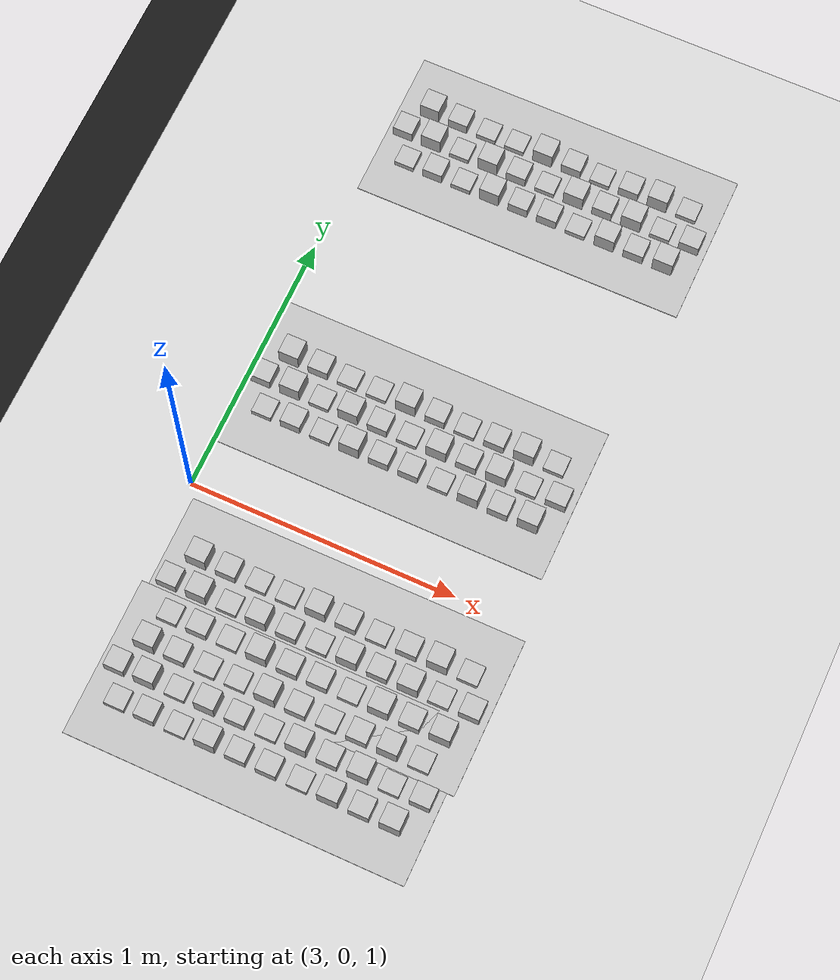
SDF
<sdf version="1.6">
 <world name="default">
  <model name="ground_plane">
   <static>1</static>
   <link name="link">
    <collision name="collision">
     <geometry><plane><normal>0 0 1</normal><size>100 100</size></plane></geometry>
     <surface><friction><ode><mu>100</mu><mu2>50</mu2></ode></friction></surface>
    </collision>
    <visual name="visual">
     <cast_shadows>0</cast_shadows>
     <geometry><plane><normal>0 0 1</normal><size>100 100</size></plane></geometry>
     <material>
      <script><uri>file://media/materials/scripts/gazebo.material</uri><name>Gazebo/Grey</name></script>
     </material>
    </visual>
   </link>
  </model>
  <model name="asphalt_plane">
   <static>1</static>
   <link name="link">
    <collision name="collision">
     <geometry><box><size>20 20 1.4296</size></box></geometry>
     <surface><friction><ode><mu>100</mu><mu2>50</mu2></ode></friction></surface>
    </collision>
    <visual name="visual">
     <cast_shadows>0</cast_shadows>
     <geometry><box><size>20 20 1.4296</size></box></geometry>
     <material>
      <script>
       <uri>model://asphalt_plane/materials/scripts</uri>
       <uri>model://asphalt_plane/materials/textures</uri>
       <name>vrc/asphalt</name>
      </script>
     </material>
    </visual>
   </link>
   <pose>-8.53833 2.29833 0.165376 0 -0 0</pose>
  </model>
  <model name="frc2016_roughterrain_1_clone_10">
   <static>0</static>
   <link name="link">
    <visual name="platform">
     <pose>0 0 0.08269 0 -0 0</pose>
     <geometry><box><size>1.27 0.5969 0.003175</size></box></geometry>
    </visual>
    <collision name="platform">
     <pose>0 0 0.08269 0 -0 0</pose>
     <geometry><box><size>1.27 0.5969 0.003175</size></box></geometry>
    </collision>
    <visual name="row1_block1_sm">
     <pose>0.51435 0.1143 0.09698 0 -0 0</pose>
     <geometry><box><size>0.0762 0.0762 0.0254</size></box></geometry>
    </visual>
    <collision name="row1_block1_sm">
     <pose>0.51435 0.1143 0.09698 0 -0 0</pose>
     <geometry><box><size>0.0762 0.0762 0.0254</size></box></geometry>
    </collision>
    <visual name="row1_block2_lg">
     <pose>0.40005 0.1143 0.12238 0 -0 0</pose>
     <geometry><box><size>0.0762 0.0762 0.0762</size></box></geometry>
    </visual>
    <collision name="row1_block2_lg">
     <pose>0.40005 0.1143 0.12238 0 -0 0</pose>
     <geometry><box><size>0.0762 0.0762 0.0762</size></box></geometry>
    </collision>
    <visual name="row1_block3_md">
     <pose>0.28575 0.1143 0.10968 0 -0 0</pose>
     <geometry><box><size>0.0762 0.0762 0.0508</size></box></geometry>
    </visual>
    <collision name="row1_block3_md">
     <pose>0.28575 0.1143 0.10968 0 -0 0</pose>
     <geometry><box><size>0.0762 0.0762 0.0508</size></box></geometry>
    </collision>
    <visual name="row1_block4_sm">
     <pose>0.17145 0.1143 0.09698 0 -0 0</pose>
     <geometry><box><size>0.0762 0.0762 0.0254</size></box></geometry>
    </visual>
    <collision name="row1_block4_sm">
     <pose>0.17145 0.1143 0.09698 0 -0 0</pose>
     <geometry><box><size>0.0762 0.0762 0.0254</size></box></geometry>
    </collision>
    <visual name="row1_block5_md">
     <pose>0.05715 0.1143 0.10968 0 -0 0</pose>
     <geometry><box><size>0.0762 0.0762 0.0508</size></box></geometry>
    </visual>
    <collision name="row1_block5_md">
     <pose>0.05715 0.1143 0.10968 0 -0 0</pose>
     <geometry><box><size>0.0762 0.0762 0.0508</size></box></geometry>
    </collision>
    <visual name="row1_block6_lg">
     <pose>-0.05715 0.1143 0.12238 0 -0 0</pose>
     <geometry><box><size>0.0762 0.0762 0.0762</size></box></geometry>
    </visual>
    <collision name="row1_block6_lg">
     <pose>-0.05715 0.1143 0.12238 0 -0 0</pose>
     <geometry><box><size>0.0762 0.0762 0.0762</size></box></geometry>
    </collision>
    <visual name="row1_block7_sm">
     <pose>-0.17145 0.1143 0.09698 0 -0 0</pose>
     <geometry><box><size>0.0762 0.0762 0.0254</size></box></geometry>
    </visual>
    <collision name="row1_block7_sm">
     <pose>-0.17145 0.1143 0.09698 0 -0 0</pose>
     <geometry><box><size>0.0762 0.0762 0.0254</size></box></geometry>
    </collision>
    <visual name="row1_block8_sm">
     <pose>-0.28575 0.1143 0.09698 0 -0 0</pose>
     <geometry><box><size>0.0762 0.0762 0.0254</size></box></geometry>
    </visual>
    <collision name="row1_block8_sm">
     <pose>-0.28575 0.1143 0.09698 0 -0 0</pose>
     <geometry><box><size>0.0762 0.0762 0.0254</size></box></geometry>
    </collision>
    <visual name="row1_block9_md">
     <pose>-0.40005 0.1143 0.10968 0 -0 0</pose>
     <geometry><box><size>0.0762 0.0762 0.0508</size></box></geometry>
    </visual>
    <collision name="row1_block9_md">
     <pose>-0.40005 0.1143 0.10968 0 -0 0</pose>
     <geometry><box><size>0.0762 0.0762 0.0508</size></box></geometry>
    </collision>
    <visual name="row1_block10_lg">
     <pose>-0.51435 0.1143 0.12238 0 -0 0</pose>
     <geometry><box><size>0.0762 0.0762 0.0762</size></box></geometry>
    </visual>
    <collision name="row1_block10_lg">
     <pose>-0.51435 0.1143 0.12238 0 -0 0</pose>
     <geometry><box><size>0.0762 0.0762 0.0762</size></box></geometry>
    </collision>
    <visual name="row2_block1_md">
     <pose>0.5715 0 0.10968 0 -0 0</pose>
     <geometry><box><size>0.0762 0.0762 0.0508</size></box></geometry>
    </visual>
    <collision name="row2_block1_md">
     <pose>0.5715 0 0.10968 0 -0 0</pose>
     <geometry><box><size>0.0762 0.0762 0.0508</size></box></geometry>
    </collision>
    <visual name="row2_block2_sm">
     <pose>0.4572 0 0.09698 0 -0 0</pose>
     <geometry><box><size>0.0762 0.0762 0.0254</size></box></geometry>
    </visual>
    <collision name="row2_block2_sm">
     <pose>0.4572 0 0.09698 0 -0 0</pose>
     <geometry><box><size>0.0762 0.0762 0.0254</size></box></geometry>
    </collision>
    <visual name="row2_block3_lg">
     <pose>0.3429 0 0.12238 0 -0 0</pose>
     <geometry><box><size>0.0762 0.0762 0.0762</size></box></geometry>
    </visual>
    <collision name="row2_block3_lg">
     <pose>0.3429 0 0.12238 0 -0 0</pose>
     <geometry><box><size>0.0762 0.0762 0.0762</size></box></geometry>
    </collision>
    <visual name="row2_block4_md">
     <pose>0.2286 0 0.10968 0 -0 0</pose>
     <geometry><box><size>0.0762 0.0762 0.0508</size></box></geometry>
    </visual>
    <collision name="row2_block4_md">
     <pose>0.2286 0 0.10968 0 -0 0</pose>
     <geometry><box><size>0.0762 0.0762 0.0508</size></box></geometry>
    </collision>
    <visual name="row2_block5_lg">
     <pose>0.1143 0 0.12238 0 -0 0</pose>
     <geometry><box><size>0.0762 0.0762 0.0762</size></box></geometry>
    </visual>
    <collision name="row2_block5_lg">
     <pose>0.1143 0 0.12238 0 -0 0</pose>
     <geometry><box><size>0.0762 0.0762 0.0762</size></box></geometry>
    </collision>
    <visual name="row2_block6_sm">
     <pose>0 0 0.09698 0 -0 0</pose>
     <geometry><box><size>0.0762 0.0762 0.0254</size></box></geometry>
    </visual>
    <collision name="row2_block6_sm">
     <pose>0 0 0.09698 0 -0 0</pose>
     <geometry><box><size>0.0762 0.0762 0.0254</size></box></geometry>
    </collision>
    <visual name="row2_block7_md">
     <pose>-0.1143 0 0.10968 0 -0 0</pose>
     <geometry><box><size>0.0762 0.0762 0.0508</size></box></geometry>
    </visual>
    <collision name="row2_block7_md">
     <pose>-0.1143 0 0.10968 0 -0 0</pose>
     <geometry><box><size>0.0762 0.0762 0.0508</size></box></geometry>
    </collision>
    <visual name="row2_block8_lg">
     <pose>-0.2286 0 0.12238 0 -0 0</pose>
     <geometry><box><size>0.0762 0.0762 0.0762</size></box></geometry>
    </visual>
    <collision name="row2_block8_lg">
     <pose>-0.2286 0 0.12238 0 -0 0</pose>
     <geometry><box><size>0.0762 0.0762 0.0762</size></box></geometry>
    </collision>
    <visual name="row2_block9_sm">
     <pose>-0.3429 0 0.09698 0 -0 0</pose>
     <geometry><box><size>0.0762 0.0762 0.0254</size></box></geometry>
    </visual>
    <collision name="row2_block9_sm">
     <pose>-0.3429 0 0.09698 0 -0 0</pose>
     <geometry><box><size>0.0762 0.0762 0.0254</size></box></geometry>
    </collision>
    <visual name="row2_block10_lg">
     <pose>-0.4572 0 0.12238 0 -0 0</pose>
     <geometry><box><size>0.0762 0.0762 0.0762</size></box></geometry>
    </visual>
    <collision name="row2_block10_lg">
     <pose>-0.4572 0 0.12238 0 -0 0</pose>
     <geometry><box><size>0.0762 0.0762 0.0762</size></box></geometry>
    </collision>
    <visual name="row2_block11_md">
     <pose>-0.5715 0 0.10968 0 -0 0</pose>
     <geometry><box><size>0.0762 0.0762 0.0508</size></box></geometry>
    </visual>
    <collision name="row2_block11_md">
     <pose>-0.5715 0 0.10968 0 -0 0</pose>
     <geometry><box><size>0.0762 0.0762 0.0508</size></box></geometry>
    </collision>
    <visual name="row3_block1_lg">
     <pose>0.51435 -0.1143 0.12238 0 -0 0</pose>
     <geometry><box><size>0.0762 0.0762 0.0762</size></box></geometry>
    </visual>
    <collision name="row3_block1_lg">
     <pose>0.51435 -0.1143 0.12238 0 -0 0</pose>
     <geometry><box><size>0.0762 0.0762 0.0762</size></box></geometry>
    </collision>
    <visual name="row3_block2_md">
     <pose>0.40005 -0.1143 0.10968 0 -0 0</pose>
     <geometry><box><size>0.0762 0.0762 0.0508</size></box></geometry>
    </visual>
    <collision name="row3_block2_md">
     <pose>0.40005 -0.1143 0.10968 0 -0 0</pose>
     <geometry><box><size>0.0762 0.0762 0.0508</size></box></geometry>
    </collision>
    <visual name="row3_block3_lg">
     <pose>0.28575 -0.1143 0.12238 0 -0 0</pose>
     <geometry><box><size>0.0762 0.0762 0.0762</size></box></geometry>
    </visual>
    <collision name="row3_block3_lg">
     <pose>0.28575 -0.1143 0.12238 0 -0 0</pose>
     <geometry><box><size>0.0762 0.0762 0.0762</size></box></geometry>
    </collision>
    <visual name="row3_block4_sm">
     <pose>0.17145 -0.1143 0.09698 0 -0 0</pose>
     <geometry><box><size>0.0762 0.0762 0.0254</size></box></geometry>
    </visual>
    <collision name="row3_block4_sm">
     <pose>0.17145 -0.1143 0.09698 0 -0 0</pose>
     <geometry><box><size>0.0762 0.0762 0.0254</size></box></geometry>
    </collision>
    <visual name="row3_block5_md">
     <pose>0.05715 -0.1143 0.10968 0 -0 0</pose>
     <geometry><box><size>0.0762 0.0762 0.0508</size></box></geometry>
    </visual>
    <collision name="row3_block5_md">
     <pose>0.05715 -0.1143 0.10968 0 -0 0</pose>
     <geometry><box><size>0.0762 0.0762 0.0508</size></box></geometry>
    </collision>
    <visual name="row3_block6_md">
     <pose>-0.05715 -0.1143 0.10968 0 -0 0</pose>
     <geometry><box><size>0.0762 0.0762 0.0508</size></box></geometry>
    </visual>
    <collision name="row3_block6_md">
     <pose>-0.05715 -0.1143 0.10968 0 -0 0</pose>
     <geometry><box><size>0.0762 0.0762 0.0508</size></box></geometry>
    </collision>
    <visual name="row3_block7_lg">
     <pose>-0.17145 -0.1143 0.12238 0 -0 0</pose>
     <geometry><box><size>0.0762 0.0762 0.0762</size></box></geometry>
    </visual>
    <collision name="row3_block7_lg">
     <pose>-0.17145 -0.1143 0.12238 0 -0 0</pose>
     <geometry><box><size>0.0762 0.0762 0.0762</size></box></geometry>
    </collision>
    <visual name="row3_block8_sm">
     <pose>-0.28575 -0.1143 0.09698 0 -0 0</pose>
     <geometry><box><size>0.0762 0.0762 0.0254</size></box></geometry>
    </visual>
    <collision name="row3_block8_sm">
     <pose>-0.28575 -0.1143 0.09698 0 -0 0</pose>
     <geometry><box><size>0.0762 0.0762 0.0254</size></box></geometry>
    </collision>
    <visual name="row3_block9_md">
     <pose>-0.40005 -0.1143 0.10968 0 -0 0</pose>
     <geometry><box><size>0.0762 0.0762 0.0508</size></box></geometry>
    </visual>
    <collision name="row3_block9_md">
     <pose>-0.40005 -0.1143 0.10968 0 -0 0</pose>
     <geometry><box><size>0.0762 0.0762 0.0508</size></box></geometry>
    </collision>
    <visual name="row3_block10_sm">
     <pose>-0.51435 -0.1143 0.09698 0 -0 0</pose>
     <geometry><box><size>0.0762 0.0762 0.0254</size></box></geometry>
    </visual>
    <collision name="row3_block10_sm">
     <pose>-0.51435 -0.1143 0.09698 0 -0 0</pose>
     <geometry><box><size>0.0762 0.0762 0.0254</size></box></geometry>
    </collision>
   </link>
   <pose>3.63208 -0.300867 0.777128 0 -0 0</pose>
  </model>
  <model name="frc2016_roughterrain_1_clone_11">
   <static>0</static>
   <link name="link">
    <visual name="platform">
     <pose>0 0 0.08269 0 -0 0</pose>
     <geometry><box><size>1.27 0.5969 0.003175</size></box></geometry>
    </visual>
    <collision name="platform">
     <pose>0 0 0.08269 0 -0 0</pose>
     <geometry><box><size>1.27 0.5969 0.003175</size></box></geometry>
    </collision>
    <visual name="row1_block1_sm">
     <pose>0.51435 0.1143 0.09698 0 -0 0</pose>
     <geometry><box><size>0.0762 0.0762 0.0254</size></box></geometry>
    </visual>
    <collision name="row1_block1_sm">
     <pose>0.51435 0.1143 0.09698 0 -0 0</pose>
     <geometry><box><size>0.0762 0.0762 0.0254</size></box></geometry>
    </collision>
    <visual name="row1_block2_lg">
     <pose>0.40005 0.1143 0.12238 0 -0 0</pose>
     <geometry><box><size>0.0762 0.0762 0.0762</size></box></geometry>
    </visual>
    <collision name="row1_block2_lg">
     <pose>0.40005 0.1143 0.12238 0 -0 0</pose>
     <geometry><box><size>0.0762 0.0762 0.0762</size></box></geometry>
    </collision>
    <visual name="row1_block3_md">
     <pose>0.28575 0.1143 0.10968 0 -0 0</pose>
     <geometry><box><size>0.0762 0.0762 0.0508</size></box></geometry>
    </visual>
    <collision name="row1_block3_md">
     <pose>0.28575 0.1143 0.10968 0 -0 0</pose>
     <geometry><box><size>0.0762 0.0762 0.0508</size></box></geometry>
    </collision>
    <visual name="row1_block4_sm">
     <pose>0.17145 0.1143 0.09698 0 -0 0</pose>
     <geometry><box><size>0.0762 0.0762 0.0254</size></box></geometry>
    </visual>
    <collision name="row1_block4_sm">
     <pose>0.17145 0.1143 0.09698 0 -0 0</pose>
     <geometry><box><size>0.0762 0.0762 0.0254</size></box></geometry>
    </collision>
    <visual name="row1_block5_md">
     <pose>0.05715 0.1143 0.10968 0 -0 0</pose>
     <geometry><box><size>0.0762 0.0762 0.0508</size></box></geometry>
    </visual>
    <collision name="row1_block5_md">
     <pose>0.05715 0.1143 0.10968 0 -0 0</pose>
     <geometry><box><size>0.0762 0.0762 0.0508</size></box></geometry>
    </collision>
    <visual name="row1_block6_lg">
     <pose>-0.05715 0.1143 0.12238 0 -0 0</pose>
     <geometry><box><size>0.0762 0.0762 0.0762</size></box></geometry>
    </visual>
    <collision name="row1_block6_lg">
     <pose>-0.05715 0.1143 0.12238 0 -0 0</pose>
     <geometry><box><size>0.0762 0.0762 0.0762</size></box></geometry>
    </collision>
    <visual name="row1_block7_sm">
     <pose>-0.17145 0.1143 0.09698 0 -0 0</pose>
     <geometry><box><size>0.0762 0.0762 0.0254</size></box></geometry>
    </visual>
    <collision name="row1_block7_sm">
     <pose>-0.17145 0.1143 0.09698 0 -0 0</pose>
     <geometry><box><size>0.0762 0.0762 0.0254</size></box></geometry>
    </collision>
    <visual name="row1_block8_sm">
     <pose>-0.28575 0.1143 0.09698 0 -0 0</pose>
     <geometry><box><size>0.0762 0.0762 0.0254</size></box></geometry>
    </visual>
    <collision name="row1_block8_sm">
     <pose>-0.28575 0.1143 0.09698 0 -0 0</pose>
     <geometry><box><size>0.0762 0.0762 0.0254</size></box></geometry>
    </collision>
    <visual name="row1_block9_md">
     <pose>-0.40005 0.1143 0.10968 0 -0 0</pose>
     <geometry><box><size>0.0762 0.0762 0.0508</size></box></geometry>
    </visual>
    <collision name="row1_block9_md">
     <pose>-0.40005 0.1143 0.10968 0 -0 0</pose>
     <geometry><box><size>0.0762 0.0762 0.0508</size></box></geometry>
    </collision>
    <visual name="row1_block10_lg">
     <pose>-0.51435 0.1143 0.12238 0 -0 0</pose>
     <geometry><box><size>0.0762 0.0762 0.0762</size></box></geometry>
    </visual>
    <collision name="row1_block10_lg">
     <pose>-0.51435 0.1143 0.12238 0 -0 0</pose>
     <geometry><box><size>0.0762 0.0762 0.0762</size></box></geometry>
    </collision>
    <visual name="row2_block1_md">
     <pose>0.5715 0 0.10968 0 -0 0</pose>
     <geometry><box><size>0.0762 0.0762 0.0508</size></box></geometry>
    </visual>
    <collision name="row2_block1_md">
     <pose>0.5715 0 0.10968 0 -0 0</pose>
     <geometry><box><size>0.0762 0.0762 0.0508</size></box></geometry>
    </collision>
    <visual name="row2_block2_sm">
     <pose>0.4572 0 0.09698 0 -0 0</pose>
     <geometry><box><size>0.0762 0.0762 0.0254</size></box></geometry>
    </visual>
    <collision name="row2_block2_sm">
     <pose>0.4572 0 0.09698 0 -0 0</pose>
     <geometry><box><size>0.0762 0.0762 0.0254</size></box></geometry>
    </collision>
    <visual name="row2_block3_lg">
     <pose>0.3429 0 0.12238 0 -0 0</pose>
     <geometry><box><size>0.0762 0.0762 0.0762</size></box></geometry>
    </visual>
    <collision name="row2_block3_lg">
     <pose>0.3429 0 0.12238 0 -0 0</pose>
     <geometry><box><size>0.0762 0.0762 0.0762</size></box></geometry>
    </collision>
    <visual name="row2_block4_md">
     <pose>0.2286 0 0.10968 0 -0 0</pose>
     <geometry><box><size>0.0762 0.0762 0.0508</size></box></geometry>
    </visual>
    <collision name="row2_block4_md">
     <pose>0.2286 0 0.10968 0 -0 0</pose>
     <geometry><box><size>0.0762 0.0762 0.0508</size></box></geometry>
    </collision>
    <visual name="row2_block5_lg">
     <pose>0.1143 0 0.12238 0 -0 0</pose>
     <geometry><box><size>0.0762 0.0762 0.0762</size></box></geometry>
    </visual>
    <collision name="row2_block5_lg">
     <pose>0.1143 0 0.12238 0 -0 0</pose>
     <geometry><box><size>0.0762 0.0762 0.0762</size></box></geometry>
    </collision>
    <visual name="row2_block6_sm">
     <pose>0 0 0.09698 0 -0 0</pose>
     <geometry><box><size>0.0762 0.0762 0.0254</size></box></geometry>
    </visual>
    <collision name="row2_block6_sm">
     <pose>0 0 0.09698 0 -0 0</pose>
     <geometry><box><size>0.0762 0.0762 0.0254</size></box></geometry>
    </collision>
    <visual name="row2_block7_md">
     <pose>-0.1143 0 0.10968 0 -0 0</pose>
     <geometry><box><size>0.0762 0.0762 0.0508</size></box></geometry>
    </visual>
    <collision name="row2_block7_md">
     <pose>-0.1143 0 0.10968 0 -0 0</pose>
     <geometry><box><size>0.0762 0.0762 0.0508</size></box></geometry>
    </collision>
    <visual name="row2_block8_lg">
     <pose>-0.2286 0 0.12238 0 -0 0</pose>
     <geometry><box><size>0.0762 0.0762 0.0762</size></box></geometry>
    </visual>
    <collision name="row2_block8_lg">
     <pose>-0.2286 0 0.12238 0 -0 0</pose>
     <geometry><box><size>0.0762 0.0762 0.0762</size></box></geometry>
    </collision>
    <visual name="row2_block9_sm">
     <pose>-0.3429 0 0.09698 0 -0 0</pose>
     <geometry><box><size>0.0762 0.0762 0.0254</size></box></geometry>
    </visual>
    <collision name="row2_block9_sm">
     <pose>-0.3429 0 0.09698 0 -0 0</pose>
     <geometry><box><size>0.0762 0.0762 0.0254</size></box></geometry>
    </collision>
    <visual name="row2_block10_lg">
     <pose>-0.4572 0 0.12238 0 -0 0</pose>
     <geometry><box><size>0.0762 0.0762 0.0762</size></box></geometry>
    </visual>
    <collision name="row2_block10_lg">
     <pose>-0.4572 0 0.12238 0 -0 0</pose>
     <geometry><box><size>0.0762 0.0762 0.0762</size></box></geometry>
    </collision>
    <visual name="row2_block11_md">
     <pose>-0.5715 0 0.10968 0 -0 0</pose>
     <geometry><box><size>0.0762 0.0762 0.0508</size></box></geometry>
    </visual>
    <collision name="row2_block11_md">
     <pose>-0.5715 0 0.10968 0 -0 0</pose>
     <geometry><box><size>0.0762 0.0762 0.0508</size></box></geometry>
    </collision>
    <visual name="row3_block1_lg">
     <pose>0.51435 -0.1143 0.12238 0 -0 0</pose>
     <geometry><box><size>0.0762 0.0762 0.0762</size></box></geometry>
    </visual>
    <collision name="row3_block1_lg">
     <pose>0.51435 -0.1143 0.12238 0 -0 0</pose>
     <geometry><box><size>0.0762 0.0762 0.0762</size></box></geometry>
    </collision>
    <visual name="row3_block2_md">
     <pose>0.40005 -0.1143 0.10968 0 -0 0</pose>
     <geometry><box><size>0.0762 0.0762 0.0508</size></box></geometry>
    </visual>
    <collision name="row3_block2_md">
     <pose>0.40005 -0.1143 0.10968 0 -0 0</pose>
     <geometry><box><size>0.0762 0.0762 0.0508</size></box></geometry>
    </collision>
    <visual name="row3_block3_lg">
     <pose>0.28575 -0.1143 0.12238 0 -0 0</pose>
     <geometry><box><size>0.0762 0.0762 0.0762</size></box></geometry>
    </visual>
    <collision name="row3_block3_lg">
     <pose>0.28575 -0.1143 0.12238 0 -0 0</pose>
     <geometry><box><size>0.0762 0.0762 0.0762</size></box></geometry>
    </collision>
    <visual name="row3_block4_sm">
     <pose>0.17145 -0.1143 0.09698 0 -0 0</pose>
     <geometry><box><size>0.0762 0.0762 0.0254</size></box></geometry>
    </visual>
    <collision name="row3_block4_sm">
     <pose>0.17145 -0.1143 0.09698 0 -0 0</pose>
     <geometry><box><size>0.0762 0.0762 0.0254</size></box></geometry>
    </collision>
    <visual name="row3_block5_md">
     <pose>0.05715 -0.1143 0.10968 0 -0 0</pose>
     <geometry><box><size>0.0762 0.0762 0.0508</size></box></geometry>
    </visual>
    <collision name="row3_block5_md">
     <pose>0.05715 -0.1143 0.10968 0 -0 0</pose>
     <geometry><box><size>0.0762 0.0762 0.0508</size></box></geometry>
    </collision>
    <visual name="row3_block6_md">
     <pose>-0.05715 -0.1143 0.10968 0 -0 0</pose>
     <geometry><box><size>0.0762 0.0762 0.0508</size></box></geometry>
    </visual>
    <collision name="row3_block6_md">
     <pose>-0.05715 -0.1143 0.10968 0 -0 0</pose>
     <geometry><box><size>0.0762 0.0762 0.0508</size></box></geometry>
    </collision>
    <visual name="row3_block7_lg">
     <pose>-0.17145 -0.1143 0.12238 0 -0 0</pose>
     <geometry><box><size>0.0762 0.0762 0.0762</size></box></geometry>
    </visual>
    <collision name="row3_block7_lg">
     <pose>-0.17145 -0.1143 0.12238 0 -0 0</pose>
     <geometry><box><size>0.0762 0.0762 0.0762</size></box></geometry>
    </collision>
    <visual name="row3_block8_sm">
     <pose>-0.28575 -0.1143 0.09698 0 -0 0</pose>
     <geometry><box><size>0.0762 0.0762 0.0254</size></box></geometry>
    </visual>
    <collision name="row3_block8_sm">
     <pose>-0.28575 -0.1143 0.09698 0 -0 0</pose>
     <geometry><box><size>0.0762 0.0762 0.0254</size></box></geometry>
    </collision>
    <visual name="row3_block9_md">
     <pose>-0.40005 -0.1143 0.10968 0 -0 0</pose>
     <geometry><box><size>0.0762 0.0762 0.0508</size></box></geometry>
    </visual>
    <collision name="row3_block9_md">
     <pose>-0.40005 -0.1143 0.10968 0 -0 0</pose>
     <geometry><box><size>0.0762 0.0762 0.0508</size></box></geometry>
    </collision>
    <visual name="row3_block10_sm">
     <pose>-0.51435 -0.1143 0.09698 0 -0 0</pose>
     <geometry><box><size>0.0762 0.0762 0.0254</size></box></geometry>
    </visual>
    <collision name="row3_block10_sm">
     <pose>-0.51435 -0.1143 0.09698 0 -0 0</pose>
     <geometry><box><size>0.0762 0.0762 0.0254</size></box></geometry>
    </collision>
   </link>
   <pose>3.60597 -0.647111 0.777128 0 -0 0</pose>
  </model>
  <model name="frc2016_roughterrain_1_clone_13">
   <static>0</static>
   <link name="link">
    <visual name="platform">
     <pose>0 0 0.08269 0 -0 0</pose>
     <geometry><box><size>1.27 0.5969 0.003175</size></box></geometry>
    </visual>
    <collision name="platform">
     <pose>0 0 0.08269 0 -0 0</pose>
     <geometry><box><size>1.27 0.5969 0.003175</size></box></geometry>
    </collision>
    <visual name="row1_block1_sm">
     <pose>0.51435 0.1143 0.09698 0 -0 0</pose>
     <geometry><box><size>0.0762 0.0762 0.0254</size></box></geometry>
    </visual>
    <collision name="row1_block1_sm">
     <pose>0.51435 0.1143 0.09698 0 -0 0</pose>
     <geometry><box><size>0.0762 0.0762 0.0254</size></box></geometry>
    </collision>
    <visual name="row1_block2_lg">
     <pose>0.40005 0.1143 0.12238 0 -0 0</pose>
     <geometry><box><size>0.0762 0.0762 0.0762</size></box></geometry>
    </visual>
    <collision name="row1_block2_lg">
     <pose>0.40005 0.1143 0.12238 0 -0 0</pose>
     <geometry><box><size>0.0762 0.0762 0.0762</size></box></geometry>
    </collision>
    <visual name="row1_block3_md">
     <pose>0.28575 0.1143 0.10968 0 -0 0</pose>
     <geometry><box><size>0.0762 0.0762 0.0508</size></box></geometry>
    </visual>
    <collision name="row1_block3_md">
     <pose>0.28575 0.1143 0.10968 0 -0 0</pose>
     <geometry><box><size>0.0762 0.0762 0.0508</size></box></geometry>
    </collision>
    <visual name="row1_block4_sm">
     <pose>0.17145 0.1143 0.09698 0 -0 0</pose>
     <geometry><box><size>0.0762 0.0762 0.0254</size></box></geometry>
    </visual>
    <collision name="row1_block4_sm">
     <pose>0.17145 0.1143 0.09698 0 -0 0</pose>
     <geometry><box><size>0.0762 0.0762 0.0254</size></box></geometry>
    </collision>
    <visual name="row1_block5_md">
     <pose>0.05715 0.1143 0.10968 0 -0 0</pose>
     <geometry><box><size>0.0762 0.0762 0.0508</size></box></geometry>
    </visual>
    <collision name="row1_block5_md">
     <pose>0.05715 0.1143 0.10968 0 -0 0</pose>
     <geometry><box><size>0.0762 0.0762 0.0508</size></box></geometry>
    </collision>
    <visual name="row1_block6_lg">
     <pose>-0.05715 0.1143 0.12238 0 -0 0</pose>
     <geometry><box><size>0.0762 0.0762 0.0762</size></box></geometry>
    </visual>
    <collision name="row1_block6_lg">
     <pose>-0.05715 0.1143 0.12238 0 -0 0</pose>
     <geometry><box><size>0.0762 0.0762 0.0762</size></box></geometry>
    </collision>
    <visual name="row1_block7_sm">
     <pose>-0.17145 0.1143 0.09698 0 -0 0</pose>
     <geometry><box><size>0.0762 0.0762 0.0254</size></box></geometry>
    </visual>
    <collision name="row1_block7_sm">
     <pose>-0.17145 0.1143 0.09698 0 -0 0</pose>
     <geometry><box><size>0.0762 0.0762 0.0254</size></box></geometry>
    </collision>
    <visual name="row1_block8_sm">
     <pose>-0.28575 0.1143 0.09698 0 -0 0</pose>
     <geometry><box><size>0.0762 0.0762 0.0254</size></box></geometry>
    </visual>
    <collision name="row1_block8_sm">
     <pose>-0.28575 0.1143 0.09698 0 -0 0</pose>
     <geometry><box><size>0.0762 0.0762 0.0254</size></box></geometry>
    </collision>
    <visual name="row1_block9_md">
     <pose>-0.40005 0.1143 0.10968 0 -0 0</pose>
     <geometry><box><size>0.0762 0.0762 0.0508</size></box></geometry>
    </visual>
    <collision name="row1_block9_md">
     <pose>-0.40005 0.1143 0.10968 0 -0 0</pose>
     <geometry><box><size>0.0762 0.0762 0.0508</size></box></geometry>
    </collision>
    <visual name="row1_block10_lg">
     <pose>-0.51435 0.1143 0.12238 0 -0 0</pose>
     <geometry><box><size>0.0762 0.0762 0.0762</size></box></geometry>
    </visual>
    <collision name="row1_block10_lg">
     <pose>-0.51435 0.1143 0.12238 0 -0 0</pose>
     <geometry><box><size>0.0762 0.0762 0.0762</size></box></geometry>
    </collision>
    <visual name="row2_block1_md">
     <pose>0.5715 0 0.10968 0 -0 0</pose>
     <geometry><box><size>0.0762 0.0762 0.0508</size></box></geometry>
    </visual>
    <collision name="row2_block1_md">
     <pose>0.5715 0 0.10968 0 -0 0</pose>
     <geometry><box><size>0.0762 0.0762 0.0508</size></box></geometry>
    </collision>
    <visual name="row2_block2_sm">
     <pose>0.4572 0 0.09698 0 -0 0</pose>
     <geometry><box><size>0.0762 0.0762 0.0254</size></box></geometry>
    </visual>
    <collision name="row2_block2_sm">
     <pose>0.4572 0 0.09698 0 -0 0</pose>
     <geometry><box><size>0.0762 0.0762 0.0254</size></box></geometry>
    </collision>
    <visual name="row2_block3_lg">
     <pose>0.3429 0 0.12238 0 -0 0</pose>
     <geometry><box><size>0.0762 0.0762 0.0762</size></box></geometry>
    </visual>
    <collision name="row2_block3_lg">
     <pose>0.3429 0 0.12238 0 -0 0</pose>
     <geometry><box><size>0.0762 0.0762 0.0762</size></box></geometry>
    </collision>
    <visual name="row2_block4_md">
     <pose>0.2286 0 0.10968 0 -0 0</pose>
     <geometry><box><size>0.0762 0.0762 0.0508</size></box></geometry>
    </visual>
    <collision name="row2_block4_md">
     <pose>0.2286 0 0.10968 0 -0 0</pose>
     <geometry><box><size>0.0762 0.0762 0.0508</size></box></geometry>
    </collision>
    <visual name="row2_block5_lg">
     <pose>0.1143 0 0.12238 0 -0 0</pose>
     <geometry><box><size>0.0762 0.0762 0.0762</size></box></geometry>
    </visual>
    <collision name="row2_block5_lg">
     <pose>0.1143 0 0.12238 0 -0 0</pose>
     <geometry><box><size>0.0762 0.0762 0.0762</size></box></geometry>
    </collision>
    <visual name="row2_block6_sm">
     <pose>0 0 0.09698 0 -0 0</pose>
     <geometry><box><size>0.0762 0.0762 0.0254</size></box></geometry>
    </visual>
    <collision name="row2_block6_sm">
     <pose>0 0 0.09698 0 -0 0</pose>
     <geometry><box><size>0.0762 0.0762 0.0254</size></box></geometry>
    </collision>
    <visual name="row2_block7_md">
     <pose>-0.1143 0 0.10968 0 -0 0</pose>
     <geometry><box><size>0.0762 0.0762 0.0508</size></box></geometry>
    </visual>
    <collision name="row2_block7_md">
     <pose>-0.1143 0 0.10968 0 -0 0</pose>
     <geometry><box><size>0.0762 0.0762 0.0508</size></box></geometry>
    </collision>
    <visual name="row2_block8_lg">
     <pose>-0.2286 0 0.12238 0 -0 0</pose>
     <geometry><box><size>0.0762 0.0762 0.0762</size></box></geometry>
    </visual>
    <collision name="row2_block8_lg">
     <pose>-0.2286 0 0.12238 0 -0 0</pose>
     <geometry><box><size>0.0762 0.0762 0.0762</size></box></geometry>
    </collision>
    <visual name="row2_block9_sm">
     <pose>-0.3429 0 0.09698 0 -0 0</pose>
     <geometry><box><size>0.0762 0.0762 0.0254</size></box></geometry>
    </visual>
    <collision name="row2_block9_sm">
     <pose>-0.3429 0 0.09698 0 -0 0</pose>
     <geometry><box><size>0.0762 0.0762 0.0254</size></box></geometry>
    </collision>
    <visual name="row2_block10_lg">
     <pose>-0.4572 0 0.12238 0 -0 0</pose>
     <geometry><box><size>0.0762 0.0762 0.0762</size></box></geometry>
    </visual>
    <collision name="row2_block10_lg">
     <pose>-0.4572 0 0.12238 0 -0 0</pose>
     <geometry><box><size>0.0762 0.0762 0.0762</size></box></geometry>
    </collision>
    <visual name="row2_block11_md">
     <pose>-0.5715 0 0.10968 0 -0 0</pose>
     <geometry><box><size>0.0762 0.0762 0.0508</size></box></geometry>
    </visual>
    <collision name="row2_block11_md">
     <pose>-0.5715 0 0.10968 0 -0 0</pose>
     <geometry><box><size>0.0762 0.0762 0.0508</size></box></geometry>
    </collision>
    <visual name="row3_block1_lg">
     <pose>0.51435 -0.1143 0.12238 0 -0 0</pose>
     <geometry><box><size>0.0762 0.0762 0.0762</size></box></geometry>
    </visual>
    <collision name="row3_block1_lg">
     <pose>0.51435 -0.1143 0.12238 0 -0 0</pose>
     <geometry><box><size>0.0762 0.0762 0.0762</size></box></geometry>
    </collision>
    <visual name="row3_block2_md">
     <pose>0.40005 -0.1143 0.10968 0 -0 0</pose>
     <geometry><box><size>0.0762 0.0762 0.0508</size></box></geometry>
    </visual>
    <collision name="row3_block2_md">
     <pose>0.40005 -0.1143 0.10968 0 -0 0</pose>
     <geometry><box><size>0.0762 0.0762 0.0508</size></box></geometry>
    </collision>
    <visual name="row3_block3_lg">
     <pose>0.28575 -0.1143 0.12238 0 -0 0</pose>
     <geometry><box><size>0.0762 0.0762 0.0762</size></box></geometry>
    </visual>
    <collision name="row3_block3_lg">
     <pose>0.28575 -0.1143 0.12238 0 -0 0</pose>
     <geometry><box><size>0.0762 0.0762 0.0762</size></box></geometry>
    </collision>
    <visual name="row3_block4_sm">
     <pose>0.17145 -0.1143 0.09698 0 -0 0</pose>
     <geometry><box><size>0.0762 0.0762 0.0254</size></box></geometry>
    </visual>
    <collision name="row3_block4_sm">
     <pose>0.17145 -0.1143 0.09698 0 -0 0</pose>
     <geometry><box><size>0.0762 0.0762 0.0254</size></box></geometry>
    </collision>
    <visual name="row3_block5_md">
     <pose>0.05715 -0.1143 0.10968 0 -0 0</pose>
     <geometry><box><size>0.0762 0.0762 0.0508</size></box></geometry>
    </visual>
    <collision name="row3_block5_md">
     <pose>0.05715 -0.1143 0.10968 0 -0 0</pose>
     <geometry><box><size>0.0762 0.0762 0.0508</size></box></geometry>
    </collision>
    <visual name="row3_block6_md">
     <pose>-0.05715 -0.1143 0.10968 0 -0 0</pose>
     <geometry><box><size>0.0762 0.0762 0.0508</size></box></geometry>
    </visual>
    <collision name="row3_block6_md">
     <pose>-0.05715 -0.1143 0.10968 0 -0 0</pose>
     <geometry><box><size>0.0762 0.0762 0.0508</size></box></geometry>
    </collision>
    <visual name="row3_block7_lg">
     <pose>-0.17145 -0.1143 0.12238 0 -0 0</pose>
     <geometry><box><size>0.0762 0.0762 0.0762</size></box></geometry>
    </visual>
    <collision name="row3_block7_lg">
     <pose>-0.17145 -0.1143 0.12238 0 -0 0</pose>
     <geometry><box><size>0.0762 0.0762 0.0762</size></box></geometry>
    </collision>
    <visual name="row3_block8_sm">
     <pose>-0.28575 -0.1143 0.09698 0 -0 0</pose>
     <geometry><box><size>0.0762 0.0762 0.0254</size></box></geometry>
    </visual>
    <collision name="row3_block8_sm">
     <pose>-0.28575 -0.1143 0.09698 0 -0 0</pose>
     <geometry><box><size>0.0762 0.0762 0.0254</size></box></geometry>
    </collision>
    <visual name="row3_block9_md">
     <pose>-0.40005 -0.1143 0.10968 0 -0 0</pose>
     <geometry><box><size>0.0762 0.0762 0.0508</size></box></geometry>
    </visual>
    <collision name="row3_block9_md">
     <pose>-0.40005 -0.1143 0.10968 0 -0 0</pose>
     <geometry><box><size>0.0762 0.0762 0.0508</size></box></geometry>
    </collision>
    <visual name="row3_block10_sm">
     <pose>-0.51435 -0.1143 0.09698 0 -0 0</pose>
     <geometry><box><size>0.0762 0.0762 0.0254</size></box></geometry>
    </visual>
    <collision name="row3_block10_sm">
     <pose>-0.51435 -0.1143 0.09698 0 -0 0</pose>
     <geometry><box><size>0.0762 0.0762 0.0254</size></box></geometry>
    </collision>
   </link>
   <pose>3.5941 0.525566 0.777128 0 -0 0</pose>
  </model>
  <model name="frc2016_roughterrain_1_clone_11_clone_5">
   <static>0</static>
   <link name="link">
    <visual name="platform">
     <pose>0 0 0.08269 0 -0 0</pose>
     <geometry><box><size>1.27 0.5969 0.003175</size></box></geometry>
    </visual>
    <collision name="platform">
     <pose>0 0 0.08269 0 -0 0</pose>
     <geometry><box><size>1.27 0.5969 0.003175</size></box></geometry>
    </collision>
    <visual name="row1_block1_sm">
     <pose>0.51435 0.1143 0.09698 0 -0 0</pose>
     <geometry><box><size>0.0762 0.0762 0.0254</size></box></geometry>
    </visual>
    <collision name="row1_block1_sm">
     <pose>0.51435 0.1143 0.09698 0 -0 0</pose>
     <geometry><box><size>0.0762 0.0762 0.0254</size></box></geometry>
    </collision>
    <visual name="row1_block2_lg">
     <pose>0.40005 0.1143 0.12238 0 -0 0</pose>
     <geometry><box><size>0.0762 0.0762 0.0762</size></box></geometry>
    </visual>
    <collision name="row1_block2_lg">
     <pose>0.40005 0.1143 0.12238 0 -0 0</pose>
     <geometry><box><size>0.0762 0.0762 0.0762</size></box></geometry>
    </collision>
    <visual name="row1_block3_md">
     <pose>0.28575 0.1143 0.10968 0 -0 0</pose>
     <geometry><box><size>0.0762 0.0762 0.0508</size></box></geometry>
    </visual>
    <collision name="row1_block3_md">
     <pose>0.28575 0.1143 0.10968 0 -0 0</pose>
     <geometry><box><size>0.0762 0.0762 0.0508</size></box></geometry>
    </collision>
    <visual name="row1_block4_sm">
     <pose>0.17145 0.1143 0.09698 0 -0 0</pose>
     <geometry><box><size>0.0762 0.0762 0.0254</size></box></geometry>
    </visual>
    <collision name="row1_block4_sm">
     <pose>0.17145 0.1143 0.09698 0 -0 0</pose>
     <geometry><box><size>0.0762 0.0762 0.0254</size></box></geometry>
    </collision>
    <visual name="row1_block5_md">
     <pose>0.05715 0.1143 0.10968 0 -0 0</pose>
     <geometry><box><size>0.0762 0.0762 0.0508</size></box></geometry>
    </visual>
    <collision name="row1_block5_md">
     <pose>0.05715 0.1143 0.10968 0 -0 0</pose>
     <geometry><box><size>0.0762 0.0762 0.0508</size></box></geometry>
    </collision>
    <visual name="row1_block6_lg">
     <pose>-0.05715 0.1143 0.12238 0 -0 0</pose>
     <geometry><box><size>0.0762 0.0762 0.0762</size></box></geometry>
    </visual>
    <collision name="row1_block6_lg">
     <pose>-0.05715 0.1143 0.12238 0 -0 0</pose>
     <geometry><box><size>0.0762 0.0762 0.0762</size></box></geometry>
    </collision>
    <visual name="row1_block7_sm">
     <pose>-0.17145 0.1143 0.09698 0 -0 0</pose>
     <geometry><box><size>0.0762 0.0762 0.0254</size></box></geometry>
    </visual>
    <collision name="row1_block7_sm">
     <pose>-0.17145 0.1143 0.09698 0 -0 0</pose>
     <geometry><box><size>0.0762 0.0762 0.0254</size></box></geometry>
    </collision>
    <visual name="row1_block8_sm">
     <pose>-0.28575 0.1143 0.09698 0 -0 0</pose>
     <geometry><box><size>0.0762 0.0762 0.0254</size></box></geometry>
    </visual>
    <collision name="row1_block8_sm">
     <pose>-0.28575 0.1143 0.09698 0 -0 0</pose>
     <geometry><box><size>0.0762 0.0762 0.0254</size></box></geometry>
    </collision>
    <visual name="row1_block9_md">
     <pose>-0.40005 0.1143 0.10968 0 -0 0</pose>
     <geometry><box><size>0.0762 0.0762 0.0508</size></box></geometry>
    </visual>
    <collision name="row1_block9_md">
     <pose>-0.40005 0.1143 0.10968 0 -0 0</pose>
     <geometry><box><size>0.0762 0.0762 0.0508</size></box></geometry>
    </collision>
    <visual name="row1_block10_lg">
     <pose>-0.51435 0.1143 0.12238 0 -0 0</pose>
     <geometry><box><size>0.0762 0.0762 0.0762</size></box></geometry>
    </visual>
    <collision name="row1_block10_lg">
     <pose>-0.51435 0.1143 0.12238 0 -0 0</pose>
     <geometry><box><size>0.0762 0.0762 0.0762</size></box></geometry>
    </collision>
    <visual name="row2_block1_md">
     <pose>0.5715 0 0.10968 0 -0 0</pose>
     <geometry><box><size>0.0762 0.0762 0.0508</size></box></geometry>
    </visual>
    <collision name="row2_block1_md">
     <pose>0.5715 0 0.10968 0 -0 0</pose>
     <geometry><box><size>0.0762 0.0762 0.0508</size></box></geometry>
    </collision>
    <visual name="row2_block2_sm">
     <pose>0.4572 0 0.09698 0 -0 0</pose>
     <geometry><box><size>0.0762 0.0762 0.0254</size></box></geometry>
    </visual>
    <collision name="row2_block2_sm">
     <pose>0.4572 0 0.09698 0 -0 0</pose>
     <geometry><box><size>0.0762 0.0762 0.0254</size></box></geometry>
    </collision>
    <visual name="row2_block3_lg">
     <pose>0.3429 0 0.12238 0 -0 0</pose>
     <geometry><box><size>0.0762 0.0762 0.0762</size></box></geometry>
    </visual>
    <collision name="row2_block3_lg">
     <pose>0.3429 0 0.12238 0 -0 0</pose>
     <geometry><box><size>0.0762 0.0762 0.0762</size></box></geometry>
    </collision>
    <visual name="row2_block4_md">
     <pose>0.2286 0 0.10968 0 -0 0</pose>
     <geometry><box><size>0.0762 0.0762 0.0508</size></box></geometry>
    </visual>
    <collision name="row2_block4_md">
     <pose>0.2286 0 0.10968 0 -0 0</pose>
     <geometry><box><size>0.0762 0.0762 0.0508</size></box></geometry>
    </collision>
    <visual name="row2_block5_lg">
     <pose>0.1143 0 0.12238 0 -0 0</pose>
     <geometry><box><size>0.0762 0.0762 0.0762</size></box></geometry>
    </visual>
    <collision name="row2_block5_lg">
     <pose>0.1143 0 0.12238 0 -0 0</pose>
     <geometry><box><size>0.0762 0.0762 0.0762</size></box></geometry>
    </collision>
    <visual name="row2_block6_sm">
     <pose>0 0 0.09698 0 -0 0</pose>
     <geometry><box><size>0.0762 0.0762 0.0254</size></box></geometry>
    </visual>
    <collision name="row2_block6_sm">
     <pose>0 0 0.09698 0 -0 0</pose>
     <geometry><box><size>0.0762 0.0762 0.0254</size></box></geometry>
    </collision>
    <visual name="row2_block7_md">
     <pose>-0.1143 0 0.10968 0 -0 0</pose>
     <geometry><box><size>0.0762 0.0762 0.0508</size></box></geometry>
    </visual>
    <collision name="row2_block7_md">
     <pose>-0.1143 0 0.10968 0 -0 0</pose>
     <geometry><box><size>0.0762 0.0762 0.0508</size></box></geometry>
    </collision>
    <visual name="row2_block8_lg">
     <pose>-0.2286 0 0.12238 0 -0 0</pose>
     <geometry><box><size>0.0762 0.0762 0.0762</size></box></geometry>
    </visual>
    <collision name="row2_block8_lg">
     <pose>-0.2286 0 0.12238 0 -0 0</pose>
     <geometry><box><size>0.0762 0.0762 0.0762</size></box></geometry>
    </collision>
    <visual name="row2_block9_sm">
     <pose>-0.3429 0 0.09698 0 -0 0</pose>
     <geometry><box><size>0.0762 0.0762 0.0254</size></box></geometry>
    </visual>
    <collision name="row2_block9_sm">
     <pose>-0.3429 0 0.09698 0 -0 0</pose>
     <geometry><box><size>0.0762 0.0762 0.0254</size></box></geometry>
    </collision>
    <visual name="row2_block10_lg">
     <pose>-0.4572 0 0.12238 0 -0 0</pose>
     <geometry><box><size>0.0762 0.0762 0.0762</size></box></geometry>
    </visual>
    <collision name="row2_block10_lg">
     <pose>-0.4572 0 0.12238 0 -0 0</pose>
     <geometry><box><size>0.0762 0.0762 0.0762</size></box></geometry>
    </collision>
    <visual name="row2_block11_md">
     <pose>-0.5715 0 0.10968 0 -0 0</pose>
     <geometry><box><size>0.0762 0.0762 0.0508</size></box></geometry>
    </visual>
    <collision name="row2_block11_md">
     <pose>-0.5715 0 0.10968 0 -0 0</pose>
     <geometry><box><size>0.0762 0.0762 0.0508</size></box></geometry>
    </collision>
    <visual name="row3_block1_lg">
     <pose>0.51435 -0.1143 0.12238 0 -0 0</pose>
     <geometry><box><size>0.0762 0.0762 0.0762</size></box></geometry>
    </visual>
    <collision name="row3_block1_lg">
     <pose>0.51435 -0.1143 0.12238 0 -0 0</pose>
     <geometry><box><size>0.0762 0.0762 0.0762</size></box></geometry>
    </collision>
    <visual name="row3_block2_md">
     <pose>0.40005 -0.1143 0.10968 0 -0 0</pose>
     <geometry><box><size>0.0762 0.0762 0.0508</size></box></geometry>
    </visual>
    <collision name="row3_block2_md">
     <pose>0.40005 -0.1143 0.10968 0 -0 0</pose>
     <geometry><box><size>0.0762 0.0762 0.0508</size></box></geometry>
    </collision>
    <visual name="row3_block3_lg">
     <pose>0.28575 -0.1143 0.12238 0 -0 0</pose>
     <geometry><box><size>0.0762 0.0762 0.0762</size></box></geometry>
    </visual>
    <collision name="row3_block3_lg">
     <pose>0.28575 -0.1143 0.12238 0 -0 0</pose>
     <geometry><box><size>0.0762 0.0762 0.0762</size></box></geometry>
    </collision>
    <visual name="row3_block4_sm">
     <pose>0.17145 -0.1143 0.09698 0 -0 0</pose>
     <geometry><box><size>0.0762 0.0762 0.0254</size></box></geometry>
    </visual>
    <collision name="row3_block4_sm">
     <pose>0.17145 -0.1143 0.09698 0 -0 0</pose>
     <geometry><box><size>0.0762 0.0762 0.0254</size></box></geometry>
    </collision>
    <visual name="row3_block5_md">
     <pose>0.05715 -0.1143 0.10968 0 -0 0</pose>
     <geometry><box><size>0.0762 0.0762 0.0508</size></box></geometry>
    </visual>
    <collision name="row3_block5_md">
     <pose>0.05715 -0.1143 0.10968 0 -0 0</pose>
     <geometry><box><size>0.0762 0.0762 0.0508</size></box></geometry>
    </collision>
    <visual name="row3_block6_md">
     <pose>-0.05715 -0.1143 0.10968 0 -0 0</pose>
     <geometry><box><size>0.0762 0.0762 0.0508</size></box></geometry>
    </visual>
    <collision name="row3_block6_md">
     <pose>-0.05715 -0.1143 0.10968 0 -0 0</pose>
     <geometry><box><size>0.0762 0.0762 0.0508</size></box></geometry>
    </collision>
    <visual name="row3_block7_lg">
     <pose>-0.17145 -0.1143 0.12238 0 -0 0</pose>
     <geometry><box><size>0.0762 0.0762 0.0762</size></box></geometry>
    </visual>
    <collision name="row3_block7_lg">
     <pose>-0.17145 -0.1143 0.12238 0 -0 0</pose>
     <geometry><box><size>0.0762 0.0762 0.0762</size></box></geometry>
    </collision>
    <visual name="row3_block8_sm">
     <pose>-0.28575 -0.1143 0.09698 0 -0 0</pose>
     <geometry><box><size>0.0762 0.0762 0.0254</size></box></geometry>
    </visual>
    <collision name="row3_block8_sm">
     <pose>-0.28575 -0.1143 0.09698 0 -0 0</pose>
     <geometry><box><size>0.0762 0.0762 0.0254</size></box></geometry>
    </collision>
    <visual name="row3_block9_md">
     <pose>-0.40005 -0.1143 0.10968 0 -0 0</pose>
     <geometry><box><size>0.0762 0.0762 0.0508</size></box></geometry>
    </visual>
    <collision name="row3_block9_md">
     <pose>-0.40005 -0.1143 0.10968 0 -0 0</pose>
     <geometry><box><size>0.0762 0.0762 0.0508</size></box></geometry>
    </collision>
    <visual name="row3_block10_sm">
     <pose>-0.51435 -0.1143 0.09698 0 -0 0</pose>
     <geometry><box><size>0.0762 0.0762 0.0254</size></box></geometry>
    </visual>
    <collision name="row3_block10_sm">
     <pose>-0.51435 -0.1143 0.09698 0 -0 0</pose>
     <geometry><box><size>0.0762 0.0762 0.0254</size></box></geometry>
    </collision>
   </link>
   <pose>3.63914 1.64578 0.777128 0 -0 0</pose>
  </model>
 </world>
</sdf>
